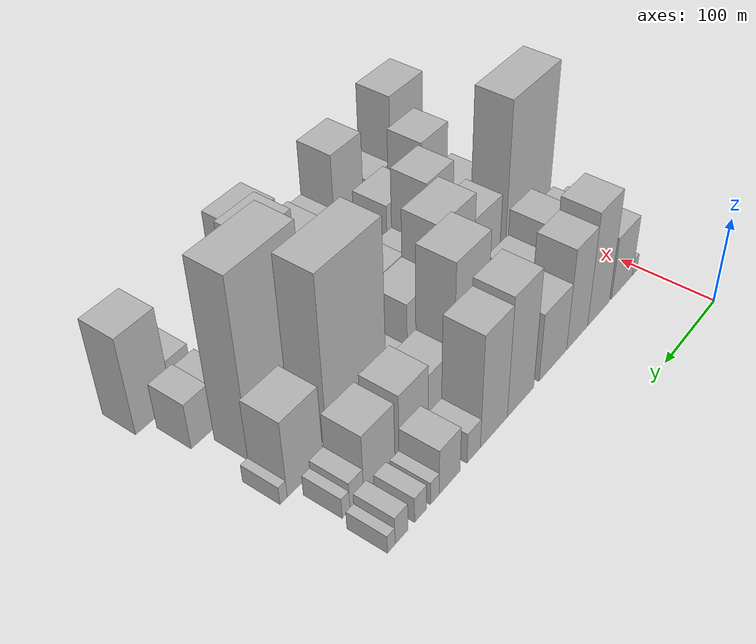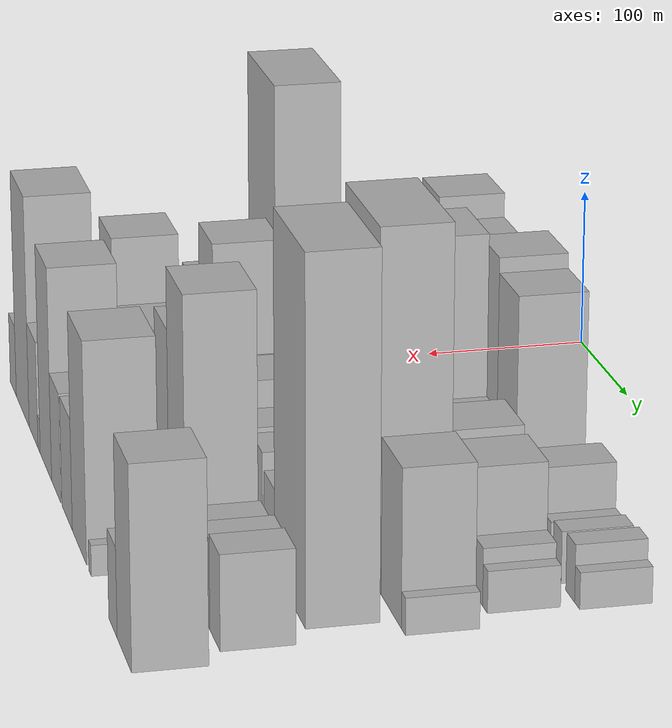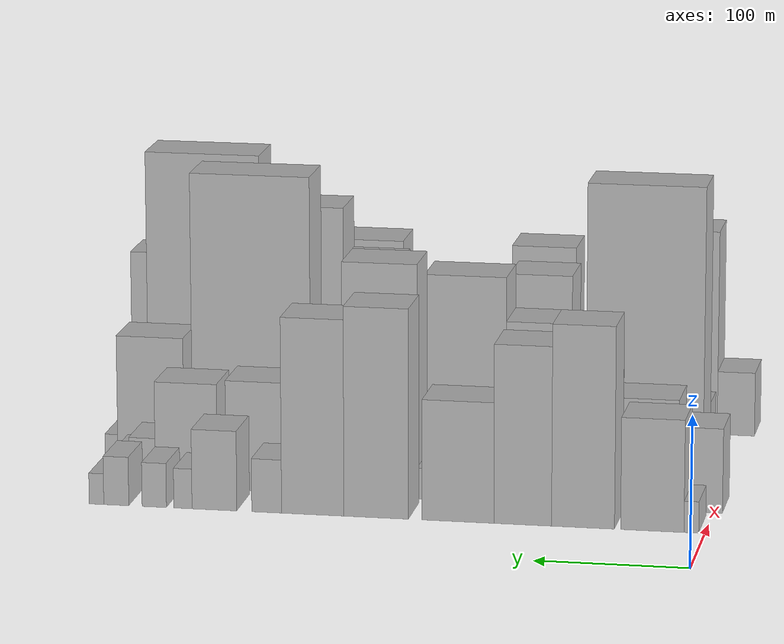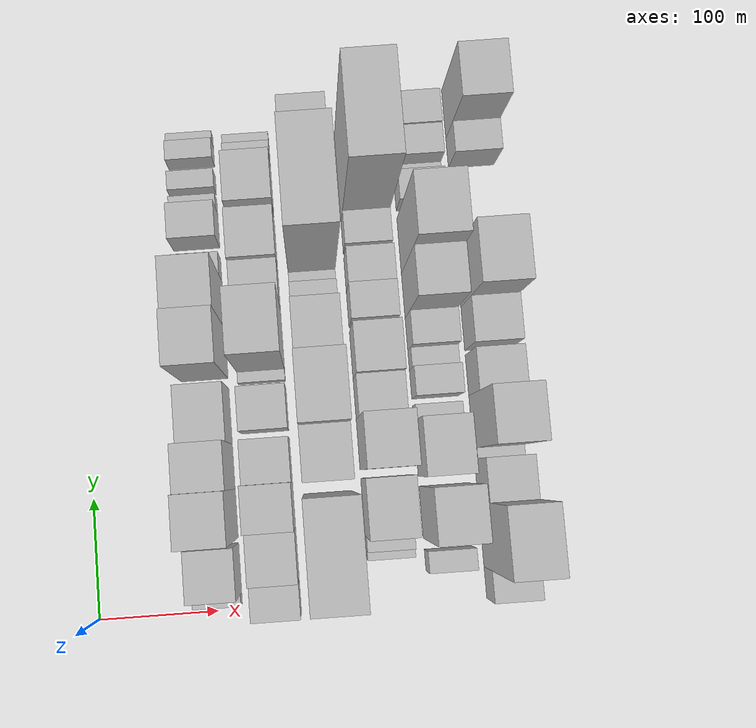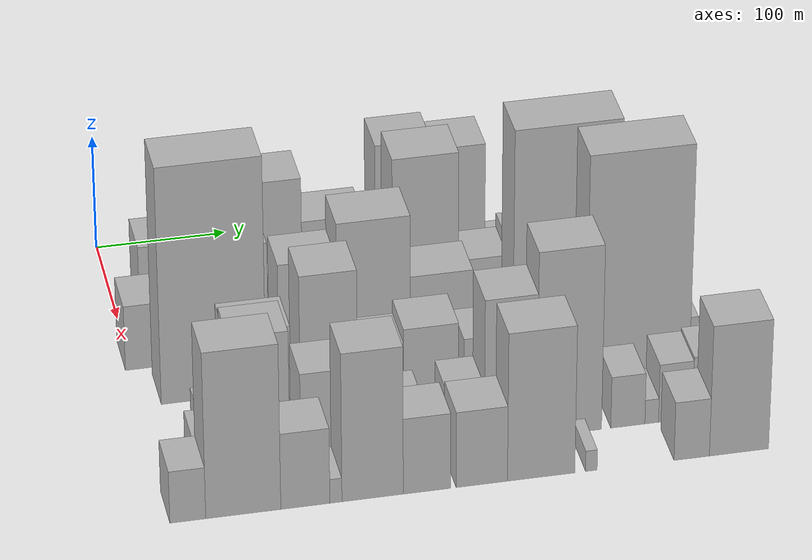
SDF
<sdf version="1.6">
 <world name="default">
  <model name="building_22">
   <static>1</static>
   <pose>100.0000 9.1661 0 0.000000 0.000000 0.000000</pose>
   <link name="link">
    <pose>0 0 10.50 0 0 0</pose>
    <collision name="collision"><geometry><box><size>40.0000 9.5852 21.0000</size></box></geometry></collision>
    <visual name="visual">
     <cast_shadows>0</cast_shadows>
     <geometry><box><size>40.0000 9.5852 21.0000</size></box></geometry>
     <material>
      <script>
       <uri>model://HANNAS_wall/materials/scripts</uri>
       <uri>model://HANNAS_wall/materials/textures</uri>
       <name>vrc/HANNAS_wall</name>
      </script>
     </material>
    </visual>
   </link>
  </model>
  <model name="building_23">
   <static>1</static>
   <pose>100.0000 34.5753 0 0.000000 0.000000 0.000000</pose>
   <link name="link">
    <pose>0 0 37.50 0 0 0</pose>
    <collision name="collision"><geometry><box><size>40.0000 41.2334 75.0000</size></box></geometry></collision>
    <visual name="visual">
     <cast_shadows>0</cast_shadows>
     <geometry><box><size>40.0000 41.2334 75.0000</size></box></geometry>
     <material>
      <script>
       <uri>model://HANNAS_wall/materials/scripts</uri>
       <uri>model://HANNAS_wall/materials/textures</uri>
       <name>vrc/HANNAS_wall</name>
      </script>
     </material>
    </visual>
   </link>
  </model>
  <model name="building_24">
   <static>1</static>
   <pose>100.0000 79.7952 0 0.000000 0.000000 0.000000</pose>
   <link name="link">
    <pose>0 0 67.50 0 0 0</pose>
    <collision name="collision"><geometry><box><size>40.0000 41.2063 135.0000</size></box></geometry></collision>
    <visual name="visual">
     <cast_shadows>0</cast_shadows>
     <geometry><box><size>40.0000 41.2063 135.0000</size></box></geometry>
     <material>
      <script>
       <uri>model://HANNAS_wall/materials/scripts</uri>
       <uri>model://HANNAS_wall/materials/textures</uri>
       <name>vrc/HANNAS_wall</name>
      </script>
     </material>
    </visual>
   </link>
  </model>
  <model name="building_25">
   <static>1</static>
   <pose>100.0000 119.3548 0 0.000000 0.000000 0.000000</pose>
   <link name="link">
    <pose>0 0 60.00 0 0 0</pose>
    <collision name="collision"><geometry><box><size>40.0000 37.9129 120.0000</size></box></geometry></collision>
    <visual name="visual">
     <cast_shadows>0</cast_shadows>
     <geometry><box><size>40.0000 37.9129 120.0000</size></box></geometry>
     <material>
      <script>
       <uri>model://HANNAS_wall/materials/scripts</uri>
       <uri>model://HANNAS_wall/materials/textures</uri>
       <name>vrc/HANNAS_wall</name>
      </script>
     </material>
    </visual>
   </link>
  </model>
  <model name="building_26">
   <static>1</static>
   <pose>100.0000 161.9908 0 0.000000 0.000000 0.000000</pose>
   <link name="link">
    <pose>0 0 40.50 0 0 0</pose>
    <collision name="collision"><geometry><box><size>40.0000 47.3593 81.0000</size></box></geometry></collision>
    <visual name="visual">
     <cast_shadows>0</cast_shadows>
     <geometry><box><size>40.0000 47.3593 81.0000</size></box></geometry>
     <material>
      <script>
       <uri>model://HANNAS_wall/materials/scripts</uri>
       <uri>model://HANNAS_wall/materials/textures</uri>
       <name>vrc/HANNAS_wall</name>
      </script>
     </material>
    </visual>
   </link>
  </model>
  <model name="building_27">
   <static>1</static>
   <pose>100.0000 216.1029 0 0.000000 0.000000 0.000000</pose>
   <link name="link">
    <pose>0 0 70.50 0 0 0</pose>
    <collision name="collision"><geometry><box><size>40.0000 42.8648 141.0000</size></box></geometry></collision>
    <visual name="visual">
     <cast_shadows>0</cast_shadows>
     <geometry><box><size>40.0000 42.8648 141.0000</size></box></geometry>
     <material>
      <script>
       <uri>model://HANNAS_wall/materials/scripts</uri>
       <uri>model://HANNAS_wall/materials/textures</uri>
       <name>vrc/HANNAS_wall</name>
      </script>
     </material>
    </visual>
   </link>
  </model>
  <model name="building_28">
   <static>1</static>
   <pose>100.0000 258.3487 0 0.000000 0.000000 0.000000</pose>
   <link name="link">
    <pose>0 0 66.00 0 0 0</pose>
    <collision name="collision"><geometry><box><size>40.0000 41.6270 132.0000</size></box></geometry></collision>
    <visual name="visual">
     <cast_shadows>0</cast_shadows>
     <geometry><box><size>40.0000 41.6270 132.0000</size></box></geometry>
     <material>
      <script>
       <uri>model://HANNAS_wall/materials/scripts</uri>
       <uri>model://HANNAS_wall/materials/textures</uri>
       <name>vrc/HANNAS_wall</name>
      </script>
     </material>
    </visual>
   </link>
  </model>
  <model name="building_29">
   <static>1</static>
   <pose>100.0000 289.1495 0 0.000000 0.000000 0.000000</pose>
   <link name="link">
    <pose>0 0 18.00 0 0 0</pose>
    <collision name="collision"><geometry><box><size>40.0000 19.9747 36.0000</size></box></geometry></collision>
    <visual name="visual">
     <cast_shadows>0</cast_shadows>
     <geometry><box><size>40.0000 19.9747 36.0000</size></box></geometry>
     <material>
      <script>
       <uri>model://HANNAS_wall/materials/scripts</uri>
       <uri>model://HANNAS_wall/materials/textures</uri>
       <name>vrc/HANNAS_wall</name>
      </script>
     </material>
    </visual>
   </link>
  </model>
  <model name="building_30">
   <static>1</static>
   <pose>100.0000 324.1866 0 0.000000 0.000000 0.000000</pose>
   <link name="link">
    <pose>0 0 27.00 0 0 0</pose>
    <collision name="collision"><geometry><box><size>40.0000 30.0996 54.0000</size></box></geometry></collision>
    <visual name="visual">
     <cast_shadows>0</cast_shadows>
     <geometry><box><size>40.0000 30.0996 54.0000</size></box></geometry>
     <material>
      <script>
       <uri>model://HANNAS_wall/materials/scripts</uri>
       <uri>model://HANNAS_wall/materials/textures</uri>
       <name>vrc/HANNAS_wall</name>
      </script>
     </material>
    </visual>
   </link>
  </model>
  <model name="building_31">
   <static>1</static>
   <pose>100.0000 345.3489 0 0.000000 0.000000 0.000000</pose>
   <link name="link">
    <pose>0 0 13.50 0 0 0</pose>
    <collision name="collision"><geometry><box><size>40.0000 12.2250 27.0000</size></box></geometry></collision>
    <visual name="visual">
     <cast_shadows>0</cast_shadows>
     <geometry><box><size>40.0000 12.2250 27.0000</size></box></geometry>
     <material>
      <script>
       <uri>model://HANNAS_wall/materials/scripts</uri>
       <uri>model://HANNAS_wall/materials/textures</uri>
       <name>vrc/HANNAS_wall</name>
      </script>
     </material>
    </visual>
   </link>
  </model>
  <model name="building_32">
   <static>1</static>
   <pose>100.0000 364.6628 0 0.000000 0.000000 0.000000</pose>
   <link name="link">
    <pose>0 0 15.00 0 0 0</pose>
    <collision name="collision"><geometry><box><size>40.0000 16.4029 30.0000</size></box></geometry></collision>
    <visual name="visual">
     <cast_shadows>0</cast_shadows>
     <geometry><box><size>40.0000 16.4029 30.0000</size></box></geometry>
     <material>
      <script>
       <uri>model://HANNAS_wall/materials/scripts</uri>
       <uri>model://HANNAS_wall/materials/textures</uri>
       <name>vrc/HANNAS_wall</name>
      </script>
     </material>
    </visual>
   </link>
  </model>
  <model name="building_33">
   <static>1</static>
   <pose>100.0000 390.3168 0 0.000000 0.000000 0.000000</pose>
   <link name="link">
    <pose>0 0 16.50 0 0 0</pose>
    <collision name="collision"><geometry><box><size>40.0000 16.9051 33.0000</size></box></geometry></collision>
    <visual name="visual">
     <cast_shadows>0</cast_shadows>
     <geometry><box><size>40.0000 16.9051 33.0000</size></box></geometry>
     <material>
      <script>
       <uri>model://HANNAS_wall/materials/scripts</uri>
       <uri>model://HANNAS_wall/materials/textures</uri>
       <name>vrc/HANNAS_wall</name>
      </script>
     </material>
    </visual>
   </link>
  </model>
  <model name="building_34">
   <static>1</static>
   <pose>100.0000 403.7031 0 0.000000 0.000000 0.000000</pose>
   <link name="link">
    <pose>0 0 10.50 0 0 0</pose>
    <collision name="collision"><geometry><box><size>40.0000 9.8676 21.0000</size></box></geometry></collision>
    <visual name="visual">
     <cast_shadows>0</cast_shadows>
     <geometry><box><size>40.0000 9.8676 21.0000</size></box></geometry>
     <material>
      <script>
       <uri>model://HANNAS_wall/materials/scripts</uri>
       <uri>model://HANNAS_wall/materials/textures</uri>
       <name>vrc/HANNAS_wall</name>
      </script>
     </material>
    </visual>
   </link>
  </model>
  <model name="building_66">
   <static>1</static>
   <pose>149.0000 9.1164 0 0.000000 0.000000 0.000000</pose>
   <link name="link">
    <pose>0 0 28.50 0 0 0</pose>
    <collision name="collision"><geometry><box><size>40.0000 29.1984 57.0000</size></box></geometry></collision>
    <visual name="visual">
     <cast_shadows>0</cast_shadows>
     <geometry><box><size>40.0000 29.1984 57.0000</size></box></geometry>
     <material>
      <script>
       <uri>model://HANNAS_wall/materials/scripts</uri>
       <uri>model://HANNAS_wall/materials/textures</uri>
       <name>vrc/HANNAS_wall</name>
      </script>
     </material>
    </visual>
   </link>
  </model>
  <model name="building_67">
   <static>1</static>
   <pose>149.0000 44.6338 0 0.000000 0.000000 0.000000</pose>
   <link name="link">
    <pose>0 0 37.50 0 0 0</pose>
    <collision name="collision"><geometry><box><size>40.0000 41.8364 75.0000</size></box></geometry></collision>
    <visual name="visual">
     <cast_shadows>0</cast_shadows>
     <geometry><box><size>40.0000 41.8364 75.0000</size></box></geometry>
     <material>
      <script>
       <uri>model://HANNAS_wall/materials/scripts</uri>
       <uri>model://HANNAS_wall/materials/textures</uri>
       <name>vrc/HANNAS_wall</name>
      </script>
     </material>
    </visual>
   </link>
  </model>
  <model name="building_68">
   <static>1</static>
   <pose>149.0000 84.2493 0 0.000000 0.000000 0.000000</pose>
   <link name="link">
    <pose>0 0 49.50 0 0 0</pose>
    <collision name="collision"><geometry><box><size>40.0000 37.3946 99.0000</size></box></geometry></collision>
    <visual name="visual">
     <cast_shadows>0</cast_shadows>
     <geometry><box><size>40.0000 37.3946 99.0000</size></box></geometry>
     <material>
      <script>
       <uri>model://HANNAS_wall/materials/scripts</uri>
       <uri>model://HANNAS_wall/materials/textures</uri>
       <name>vrc/HANNAS_wall</name>
      </script>
     </material>
    </visual>
   </link>
  </model>
  <model name="building_69">
   <static>1</static>
   <pose>149.0000 121.1175 0 0.000000 0.000000 0.000000</pose>
   <link name="link">
    <pose>0 0 34.50 0 0 0</pose>
    <collision name="collision"><geometry><box><size>40.0000 36.3419 69.0000</size></box></geometry></collision>
    <visual name="visual">
     <cast_shadows>0</cast_shadows>
     <geometry><box><size>40.0000 36.3419 69.0000</size></box></geometry>
     <material>
      <script>
       <uri>model://HANNAS_wall/materials/scripts</uri>
       <uri>model://HANNAS_wall/materials/textures</uri>
       <name>vrc/HANNAS_wall</name>
      </script>
     </material>
    </visual>
   </link>
  </model>
  <model name="building_70">
   <static>1</static>
   <pose>149.0000 164.3185 0 0.000000 0.000000 0.000000</pose>
   <link name="link">
    <pose>0 0 31.50 0 0 0</pose>
    <collision name="collision"><geometry><box><size>40.0000 36.0601 63.0000</size></box></geometry></collision>
    <visual name="visual">
     <cast_shadows>0</cast_shadows>
     <geometry><box><size>40.0000 36.0601 63.0000</size></box></geometry>
     <material>
      <script>
       <uri>model://HANNAS_wall/materials/scripts</uri>
       <uri>model://HANNAS_wall/materials/textures</uri>
       <name>vrc/HANNAS_wall</name>
      </script>
     </material>
    </visual>
   </link>
  </model>
  <model name="building_71">
   <static>1</static>
   <pose>149.0000 192.9836 0 0.000000 0.000000 0.000000</pose>
   <link name="link">
    <pose>0 0 10.50 0 0 0</pose>
    <collision name="collision"><geometry><box><size>40.0000 9.2701 21.0000</size></box></geometry></collision>
    <visual name="visual">
     <cast_shadows>0</cast_shadows>
     <geometry><box><size>40.0000 9.2701 21.0000</size></box></geometry>
     <material>
      <script>
       <uri>model://HANNAS_wall/materials/scripts</uri>
       <uri>model://HANNAS_wall/materials/textures</uri>
       <name>vrc/HANNAS_wall</name>
      </script>
     </material>
    </visual>
   </link>
  </model>
  <model name="building_72">
   <static>1</static>
   <pose>149.0000 222.7873 0 0.000000 0.000000 0.000000</pose>
   <link name="link">
    <pose>0 0 79.50 0 0 0</pose>
    <collision name="collision"><geometry><box><size>40.0000 50.3372 159.0000</size></box></geometry></collision>
    <visual name="visual">
     <cast_shadows>0</cast_shadows>
     <geometry><box><size>40.0000 50.3372 159.0000</size></box></geometry>
     <material>
      <script>
       <uri>model://HANNAS_wall/materials/scripts</uri>
       <uri>model://HANNAS_wall/materials/textures</uri>
       <name>vrc/HANNAS_wall</name>
      </script>
     </material>
    </visual>
   </link>
  </model>
  <model name="building_73">
   <static>1</static>
   <pose>149.0000 266.7181 0 0.000000 0.000000 0.000000</pose>
   <link name="link">
    <pose>0 0 31.50 0 0 0</pose>
    <collision name="collision"><geometry><box><size>40.0000 37.5245 63.0000</size></box></geometry></collision>
    <visual name="visual">
     <cast_shadows>0</cast_shadows>
     <geometry><box><size>40.0000 37.5245 63.0000</size></box></geometry>
     <material>
      <script>
       <uri>model://HANNAS_wall/materials/scripts</uri>
       <uri>model://HANNAS_wall/materials/textures</uri>
       <name>vrc/HANNAS_wall</name>
      </script>
     </material>
    </visual>
   </link>
  </model>
  <model name="building_74">
   <static>1</static>
   <pose>149.0000 306.2105 0 0.000000 0.000000 0.000000</pose>
   <link name="link">
    <pose>0 0 37.50 0 0 0</pose>
    <collision name="collision"><geometry><box><size>40.0000 41.4601 75.0000</size></box></geometry></collision>
    <visual name="visual">
     <cast_shadows>0</cast_shadows>
     <geometry><box><size>40.0000 41.4601 75.0000</size></box></geometry>
     <material>
      <script>
       <uri>model://HANNAS_wall/materials/scripts</uri>
       <uri>model://HANNAS_wall/materials/textures</uri>
       <name>vrc/HANNAS_wall</name>
      </script>
     </material>
    </visual>
   </link>
  </model>
  <model name="building_75">
   <static>1</static>
   <pose>149.0000 354.0770 0 0.000000 0.000000 0.000000</pose>
   <link name="link">
    <pose>0 0 36.00 0 0 0</pose>
    <collision name="collision"><geometry><box><size>40.0000 42.2728 72.0000</size></box></geometry></collision>
    <visual name="visual">
     <cast_shadows>0</cast_shadows>
     <geometry><box><size>40.0000 42.2728 72.0000</size></box></geometry>
     <material>
      <script>
       <uri>model://HANNAS_wall/materials/scripts</uri>
       <uri>model://HANNAS_wall/materials/textures</uri>
       <name>vrc/HANNAS_wall</name>
      </script>
     </material>
    </visual>
   </link>
  </model>
  <model name="building_76">
   <static>1</static>
   <pose>149.0000 384.2077 0 0.000000 0.000000 0.000000</pose>
   <link name="link">
    <pose>0 0 16.50 0 0 0</pose>
    <collision name="collision"><geometry><box><size>40.0000 17.9886 33.0000</size></box></geometry></collision>
    <visual name="visual">
     <cast_shadows>0</cast_shadows>
     <geometry><box><size>40.0000 17.9886 33.0000</size></box></geometry>
     <material>
      <script>
       <uri>model://HANNAS_wall/materials/scripts</uri>
       <uri>model://HANNAS_wall/materials/textures</uri>
       <name>vrc/HANNAS_wall</name>
      </script>
     </material>
    </visual>
   </link>
  </model>
  <model name="building_77">
   <static>1</static>
   <pose>149.0000 398.1932 0 0.000000 0.000000 0.000000</pose>
   <link name="link">
    <pose>0 0 12.00 0 0 0</pose>
    <collision name="collision"><geometry><box><size>40.0000 9.9822 24.0000</size></box></geometry></collision>
    <visual name="visual">
     <cast_shadows>0</cast_shadows>
     <geometry><box><size>40.0000 9.9822 24.0000</size></box></geometry>
     <material>
      <script>
       <uri>model://HANNAS_wall/materials/scripts</uri>
       <uri>model://HANNAS_wall/materials/textures</uri>
       <name>vrc/HANNAS_wall</name>
      </script>
     </material>
    </visual>
   </link>
  </model>
  <model name="building_112">
   <static>1</static>
   <pose>198.0000 52.5834 0 0.000000 0.000000 0.000000</pose>
   <link name="link">
    <pose>0 0 103.50 0 0 0</pose>
    <collision name="collision"><geometry><box><size>40.0000 78.7155 207.0000</size></box></geometry></collision>
    <visual name="visual">
     <cast_shadows>0</cast_shadows>
     <geometry><box><size>40.0000 78.7155 207.0000</size></box></geometry>
     <material>
      <script>
       <uri>model://HANNAS_wall/materials/scripts</uri>
       <uri>model://HANNAS_wall/materials/textures</uri>
       <name>vrc/HANNAS_wall</name>
      </script>
     </material>
    </visual>
   </link>
  </model>
  <model name="building_113">
   <static>1</static>
   <pose>198.0000 123.8602 0 0.000000 0.000000 0.000000</pose>
   <link name="link">
    <pose>0 0 55.50 0 0 0</pose>
    <collision name="collision"><geometry><box><size>40.0000 43.8381 111.0000</size></box></geometry></collision>
    <visual name="visual">
     <cast_shadows>0</cast_shadows>
     <geometry><box><size>40.0000 43.8381 111.0000</size></box></geometry>
     <material>
      <script>
       <uri>model://HANNAS_wall/materials/scripts</uri>
       <uri>model://HANNAS_wall/materials/textures</uri>
       <name>vrc/HANNAS_wall</name>
      </script>
     </material>
    </visual>
   </link>
  </model>
  <model name="building_114">
   <static>1</static>
   <pose>198.0000 173.4281 0 0.000000 0.000000 0.000000</pose>
   <link name="link">
    <pose>0 0 70.50 0 0 0</pose>
    <collision name="collision"><geometry><box><size>40.0000 55.2977 141.0000</size></box></geometry></collision>
    <visual name="visual">
     <cast_shadows>0</cast_shadows>
     <geometry><box><size>40.0000 55.2977 141.0000</size></box></geometry>
     <material>
      <script>
       <uri>model://HANNAS_wall/materials/scripts</uri>
       <uri>model://HANNAS_wall/materials/textures</uri>
       <name>vrc/HANNAS_wall</name>
      </script>
     </material>
    </visual>
   </link>
  </model>
  <model name="building_115">
   <static>1</static>
   <pose>198.0000 224.7339 0 0.000000 0.000000 0.000000</pose>
   <link name="link">
    <pose>0 0 43.50 0 0 0</pose>
    <collision name="collision"><geometry><box><size>40.0000 47.3138 87.0000</size></box></geometry></collision>
    <visual name="visual">
     <cast_shadows>0</cast_shadows>
     <geometry><box><size>40.0000 47.3138 87.0000</size></box></geometry>
     <material>
      <script>
       <uri>model://HANNAS_wall/materials/scripts</uri>
       <uri>model://HANNAS_wall/materials/textures</uri>
       <name>vrc/HANNAS_wall</name>
      </script>
     </material>
    </visual>
   </link>
  </model>
  <model name="building_116">
   <static>1</static>
   <pose>198.0000 258.4182 0 0.000000 0.000000 0.000000</pose>
   <link name="link">
    <pose>0 0 19.50 0 0 0</pose>
    <collision name="collision"><geometry><box><size>40.0000 20.0548 39.0000</size></box></geometry></collision>
    <visual name="visual">
     <cast_shadows>0</cast_shadows>
     <geometry><box><size>40.0000 20.0548 39.0000</size></box></geometry>
     <material>
      <script>
       <uri>model://HANNAS_wall/materials/scripts</uri>
       <uri>model://HANNAS_wall/materials/textures</uri>
       <name>vrc/HANNAS_wall</name>
      </script>
     </material>
    </visual>
   </link>
  </model>
  <model name="building_117">
   <static>1</static>
   <pose>198.0000 273.7529 0 0.000000 0.000000 0.000000</pose>
   <link name="link">
    <pose>0 0 12.00 0 0 0</pose>
    <collision name="collision"><geometry><box><size>40.0000 10.6147 24.0000</size></box></geometry></collision>
    <visual name="visual">
     <cast_shadows>0</cast_shadows>
     <geometry><box><size>40.0000 10.6147 24.0000</size></box></geometry>
     <material>
      <script>
       <uri>model://HANNAS_wall/materials/scripts</uri>
       <uri>model://HANNAS_wall/materials/textures</uri>
       <name>vrc/HANNAS_wall</name>
      </script>
     </material>
    </visual>
   </link>
  </model>
  <model name="building_118">
   <static>1</static>
   <pose>198.0000 319.8002 0 0.000000 0.000000 0.000000</pose>
   <link name="link">
    <pose>0 0 102.00 0 0 0</pose>
    <collision name="collision"><geometry><box><size>40.0000 81.4798 204.0000</size></box></geometry></collision>
    <visual name="visual">
     <cast_shadows>0</cast_shadows>
     <geometry><box><size>40.0000 81.4798 204.0000</size></box></geometry>
     <material>
      <script>
       <uri>model://HANNAS_wall/materials/scripts</uri>
       <uri>model://HANNAS_wall/materials/textures</uri>
       <name>vrc/HANNAS_wall</name>
      </script>
     </material>
    </visual>
   </link>
  </model>
  <model name="building_119">
   <static>1</static>
   <pose>198.0000 363.5542 0 0.000000 0.000000 0.000000</pose>
   <link name="link">
    <pose>0 0 7.50 0 0 0</pose>
    <collision name="collision"><geometry><box><size>40.0000 6.0283 15.0000</size></box></geometry></collision>
    <visual name="visual">
     <cast_shadows>0</cast_shadows>
     <geometry><box><size>40.0000 6.0283 15.0000</size></box></geometry>
     <material>
      <script>
       <uri>model://HANNAS_wall/materials/scripts</uri>
       <uri>model://HANNAS_wall/materials/textures</uri>
       <name>vrc/HANNAS_wall</name>
      </script>
     </material>
    </visual>
   </link>
  </model>
  <model name="building_120">
   <static>1</static>
   <pose>198.0000 389.5732 0 0.000000 0.000000 0.000000</pose>
   <link name="link">
    <pose>0 0 45.00 0 0 0</pose>
    <collision name="collision"><geometry><box><size>40.0000 46.0097 90.0000</size></box></geometry></collision>
    <visual name="visual">
     <cast_shadows>0</cast_shadows>
     <geometry><box><size>40.0000 46.0097 90.0000</size></box></geometry>
     <material>
      <script>
       <uri>model://HANNAS_wall/materials/scripts</uri>
       <uri>model://HANNAS_wall/materials/textures</uri>
       <name>vrc/HANNAS_wall</name>
      </script>
     </material>
    </visual>
   </link>
  </model>
  <model name="building_121">
   <static>1</static>
   <pose>198.0000 417.0687 0 0.000000 0.000000 0.000000</pose>
   <link name="link">
    <pose>0 0 10.50 0 0 0</pose>
    <collision name="collision"><geometry><box><size>40.0000 8.9812 21.0000</size></box></geometry></collision>
    <visual name="visual">
     <cast_shadows>0</cast_shadows>
     <geometry><box><size>40.0000 8.9812 21.0000</size></box></geometry>
     <material>
      <script>
       <uri>model://HANNAS_wall/materials/scripts</uri>
       <uri>model://HANNAS_wall/materials/textures</uri>
       <name>vrc/HANNAS_wall</name>
      </script>
     </material>
    </visual>
   </link>
  </model>
  <model name="building_161">
   <static>1</static>
   <pose>247.0000 37.1595 0 0.000000 0.000000 0.000000</pose>
   <link name="link">
    <pose>0 0 9.00 0 0 0</pose>
    <collision name="collision"><geometry><box><size>40.0000 7.2282 18.0000</size></box></geometry></collision>
    <visual name="visual">
     <cast_shadows>0</cast_shadows>
     <geometry><box><size>40.0000 7.2282 18.0000</size></box></geometry>
     <material>
      <script>
       <uri>model://HANNAS_wall/materials/scripts</uri>
       <uri>model://HANNAS_wall/materials/textures</uri>
       <name>vrc/HANNAS_wall</name>
      </script>
     </material>
    </visual>
   </link>
  </model>
  <model name="building_162">
   <static>1</static>
   <pose>247.0000 47.1536 0 0.000000 0.000000 0.000000</pose>
   <link name="link">
    <pose>0 0 13.50 0 0 0</pose>
    <collision name="collision"><geometry><box><size>40.0000 12.7600 27.0000</size></box></geometry></collision>
    <visual name="visual">
     <cast_shadows>0</cast_shadows>
     <geometry><box><size>40.0000 12.7600 27.0000</size></box></geometry>
     <material>
      <script>
       <uri>model://HANNAS_wall/materials/scripts</uri>
       <uri>model://HANNAS_wall/materials/textures</uri>
       <name>vrc/HANNAS_wall</name>
      </script>
     </material>
    </visual>
   </link>
  </model>
  <model name="building_163">
   <static>1</static>
   <pose>247.0000 77.5906 0 0.000000 0.000000 0.000000</pose>
   <link name="link">
    <pose>0 0 45.00 0 0 0</pose>
    <collision name="collision"><geometry><box><size>40.0000 48.1140 90.0000</size></box></geometry></collision>
    <visual name="visual">
     <cast_shadows>0</cast_shadows>
     <geometry><box><size>40.0000 48.1140 90.0000</size></box></geometry>
     <material>
      <script>
       <uri>model://HANNAS_wall/materials/scripts</uri>
       <uri>model://HANNAS_wall/materials/textures</uri>
       <name>vrc/HANNAS_wall</name>
      </script>
     </material>
    </visual>
   </link>
  </model>
  <model name="building_164">
   <static>1</static>
   <pose>247.0000 129.9689 0 0.000000 0.000000 0.000000</pose>
   <link name="link">
    <pose>0 0 66.00 0 0 0</pose>
    <collision name="collision"><geometry><box><size>40.0000 42.6427 132.0000</size></box></geometry></collision>
    <visual name="visual">
     <cast_shadows>0</cast_shadows>
     <geometry><box><size>40.0000 42.6427 132.0000</size></box></geometry>
     <material>
      <script>
       <uri>model://HANNAS_wall/materials/scripts</uri>
       <uri>model://HANNAS_wall/materials/textures</uri>
       <name>vrc/HANNAS_wall</name>
      </script>
     </material>
    </visual>
   </link>
  </model>
  <model name="building_165">
   <static>1</static>
   <pose>247.0000 168.5126 0 0.000000 0.000000 0.000000</pose>
   <link name="link">
    <pose>0 0 31.50 0 0 0</pose>
    <collision name="collision"><geometry><box><size>40.0000 34.4446 63.0000</size></box></geometry></collision>
    <visual name="visual">
     <cast_shadows>0</cast_shadows>
     <geometry><box><size>40.0000 34.4446 63.0000</size></box></geometry>
     <material>
      <script>
       <uri>model://HANNAS_wall/materials/scripts</uri>
       <uri>model://HANNAS_wall/materials/textures</uri>
       <name>vrc/HANNAS_wall</name>
      </script>
     </material>
    </visual>
   </link>
  </model>
  <model name="building_166">
   <static>1</static>
   <pose>247.0000 206.3628 0 0.000000 0.000000 0.000000</pose>
   <link name="link">
    <pose>0 0 37.50 0 0 0</pose>
    <collision name="collision"><geometry><box><size>40.0000 41.2558 75.0000</size></box></geometry></collision>
    <visual name="visual">
     <cast_shadows>0</cast_shadows>
     <geometry><box><size>40.0000 41.2558 75.0000</size></box></geometry>
     <material>
      <script>
       <uri>model://HANNAS_wall/materials/scripts</uri>
       <uri>model://HANNAS_wall/materials/textures</uri>
       <name>vrc/HANNAS_wall</name>
      </script>
     </material>
    </visual>
   </link>
  </model>
  <model name="building_167">
   <static>1</static>
   <pose>247.0000 246.0816 0 0.000000 0.000000 0.000000</pose>
   <link name="link">
    <pose>0 0 30.00 0 0 0</pose>
    <collision name="collision"><geometry><box><size>40.0000 30.1819 60.0000</size></box></geometry></collision>
    <visual name="visual">
     <cast_shadows>0</cast_shadows>
     <geometry><box><size>40.0000 30.1819 60.0000</size></box></geometry>
     <material>
      <script>
       <uri>model://HANNAS_wall/materials/scripts</uri>
       <uri>model://HANNAS_wall/materials/textures</uri>
       <name>vrc/HANNAS_wall</name>
      </script>
     </material>
    </visual>
   </link>
  </model>
  <model name="building_168">
   <static>1</static>
   <pose>247.0000 276.3385 0 0.000000 0.000000 0.000000</pose>
   <link name="link">
    <pose>0 0 28.50 0 0 0</pose>
    <collision name="collision"><geometry><box><size>40.0000 30.3320 57.0000</size></box></geometry></collision>
    <visual name="visual">
     <cast_shadows>0</cast_shadows>
     <geometry><box><size>40.0000 30.3320 57.0000</size></box></geometry>
     <material>
      <script>
       <uri>model://HANNAS_wall/materials/scripts</uri>
       <uri>model://HANNAS_wall/materials/textures</uri>
       <name>vrc/HANNAS_wall</name>
      </script>
     </material>
    </visual>
   </link>
  </model>
  <model name="building_169">
   <static>1</static>
   <pose>247.0000 309.5187 0 0.000000 0.000000 0.000000</pose>
   <link name="link">
    <pose>0 0 24.00 0 0 0</pose>
    <collision name="collision"><geometry><box><size>40.0000 28.0284 48.0000</size></box></geometry></collision>
    <visual name="visual">
     <cast_shadows>0</cast_shadows>
     <geometry><box><size>40.0000 28.0284 48.0000</size></box></geometry>
     <material>
      <script>
       <uri>model://HANNAS_wall/materials/scripts</uri>
       <uri>model://HANNAS_wall/materials/textures</uri>
       <name>vrc/HANNAS_wall</name>
      </script>
     </material>
    </visual>
   </link>
  </model>
  <model name="building_170">
   <static>1</static>
   <pose>247.0000 362.9396 0 0.000000 0.000000 0.000000</pose>
   <link name="link">
    <pose>0 0 103.50 0 0 0</pose>
    <collision name="collision"><geometry><box><size>40.0000 78.8132 207.0000</size></box></geometry></collision>
    <visual name="visual">
     <cast_shadows>0</cast_shadows>
     <geometry><box><size>40.0000 78.8132 207.0000</size></box></geometry>
     <material>
      <script>
       <uri>model://HANNAS_wall/materials/scripts</uri>
       <uri>model://HANNAS_wall/materials/textures</uri>
       <name>vrc/HANNAS_wall</name>
      </script>
     </material>
    </visual>
   </link>
  </model>
  <model name="building_209">
   <static>1</static>
   <pose>296.0000 29.5977 0 0.000000 0.000000 0.000000</pose>
   <link name="link">
    <pose>0 0 16.50 0 0 0</pose>
    <collision name="collision"><geometry><box><size>40.0000 17.8611 33.0000</size></box></geometry></collision>
    <visual name="visual">
     <cast_shadows>0</cast_shadows>
     <geometry><box><size>40.0000 17.8611 33.0000</size></box></geometry>
     <material>
      <script>
       <uri>model://HANNAS_wall/materials/scripts</uri>
       <uri>model://HANNAS_wall/materials/textures</uri>
       <name>vrc/HANNAS_wall</name>
      </script>
     </material>
    </visual>
   </link>
  </model>
  <model name="building_210">
   <static>1</static>
   <pose>296.0000 69.4415 0 0.000000 0.000000 0.000000</pose>
   <link name="link">
    <pose>0 0 60.00 0 0 0</pose>
    <collision name="collision"><geometry><box><size>40.0000 43.8264 120.0000</size></box></geometry></collision>
    <visual name="visual">
     <cast_shadows>0</cast_shadows>
     <geometry><box><size>40.0000 43.8264 120.0000</size></box></geometry>
     <material>
      <script>
       <uri>model://HANNAS_wall/materials/scripts</uri>
       <uri>model://HANNAS_wall/materials/textures</uri>
       <name>vrc/HANNAS_wall</name>
      </script>
     </material>
    </visual>
   </link>
  </model>
  <model name="building_211">
   <static>1</static>
   <pose>296.0000 123.1635 0 0.000000 0.000000 0.000000</pose>
   <link name="link">
    <pose>0 0 40.50 0 0 0</pose>
    <collision name="collision"><geometry><box><size>40.0000 47.6177 81.0000</size></box></geometry></collision>
    <visual name="visual">
     <cast_shadows>0</cast_shadows>
     <geometry><box><size>40.0000 47.6177 81.0000</size></box></geometry>
     <material>
      <script>
       <uri>model://HANNAS_wall/materials/scripts</uri>
       <uri>model://HANNAS_wall/materials/textures</uri>
       <name>vrc/HANNAS_wall</name>
      </script>
     </material>
    </visual>
   </link>
  </model>
  <model name="building_212">
   <static>1</static>
   <pose>296.0000 153.2409 0 0.000000 0.000000 0.000000</pose>
   <link name="link">
    <pose>0 0 13.50 0 0 0</pose>
    <collision name="collision"><geometry><box><size>40.0000 12.5372 27.0000</size></box></geometry></collision>
    <visual name="visual">
     <cast_shadows>0</cast_shadows>
     <geometry><box><size>40.0000 12.5372 27.0000</size></box></geometry>
     <material>
      <script>
       <uri>model://HANNAS_wall/materials/scripts</uri>
       <uri>model://HANNAS_wall/materials/textures</uri>
       <name>vrc/HANNAS_wall</name>
      </script>
     </material>
    </visual>
   </link>
  </model>
  <model name="building_213">
   <static>1</static>
   <pose>296.0000 177.8517 0 0.000000 0.000000 0.000000</pose>
   <link name="link">
    <pose>0 0 22.50 0 0 0</pose>
    <collision name="collision"><geometry><box><size>40.0000 24.6843 45.0000</size></box></geometry></collision>
    <visual name="visual">
     <cast_shadows>0</cast_shadows>
     <geometry><box><size>40.0000 24.6843 45.0000</size></box></geometry>
     <material>
      <script>
       <uri>model://HANNAS_wall/materials/scripts</uri>
       <uri>model://HANNAS_wall/materials/textures</uri>
       <name>vrc/HANNAS_wall</name>
      </script>
     </material>
    </visual>
   </link>
  </model>
  <model name="building_214">
   <static>1</static>
   <pose>296.0000 198.6829 0 0.000000 0.000000 0.000000</pose>
   <link name="link">
    <pose>0 0 15.00 0 0 0</pose>
    <collision name="collision"><geometry><box><size>40.0000 16.9780 30.0000</size></box></geometry></collision>
    <visual name="visual">
     <cast_shadows>0</cast_shadows>
     <geometry><box><size>40.0000 16.9780 30.0000</size></box></geometry>
     <material>
      <script>
       <uri>model://HANNAS_wall/materials/scripts</uri>
       <uri>model://HANNAS_wall/materials/textures</uri>
       <name>vrc/HANNAS_wall</name>
      </script>
     </material>
    </visual>
   </link>
  </model>
  <model name="building_215">
   <static>1</static>
   <pose>296.0000 221.4065 0 0.000000 0.000000 0.000000</pose>
   <link name="link">
    <pose>0 0 25.50 0 0 0</pose>
    <collision name="collision"><geometry><box><size>40.0000 28.4693 51.0000</size></box></geometry></collision>
    <visual name="visual">
     <cast_shadows>0</cast_shadows>
     <geometry><box><size>40.0000 28.4693 51.0000</size></box></geometry>
     <material>
      <script>
       <uri>model://HANNAS_wall/materials/scripts</uri>
       <uri>model://HANNAS_wall/materials/textures</uri>
       <name>vrc/HANNAS_wall</name>
      </script>
     </material>
    </visual>
   </link>
  </model>
  <model name="building_216">
   <static>1</static>
   <pose>296.0000 255.3414 0 0.000000 0.000000 0.000000</pose>
   <link name="link">
    <pose>0 0 63.00 0 0 0</pose>
    <collision name="collision"><geometry><box><size>40.0000 39.4004 126.0000</size></box></geometry></collision>
    <visual name="visual">
     <cast_shadows>0</cast_shadows>
     <geometry><box><size>40.0000 39.4004 126.0000</size></box></geometry>
     <material>
      <script>
       <uri>model://HANNAS_wall/materials/scripts</uri>
       <uri>model://HANNAS_wall/materials/textures</uri>
       <name>vrc/HANNAS_wall</name>
      </script>
     </material>
    </visual>
   </link>
  </model>
  <model name="building_217">
   <static>1</static>
   <pose>296.0000 299.3544 0 0.000000 0.000000 0.000000</pose>
   <link name="link">
    <pose>0 0 81.00 0 0 0</pose>
    <collision name="collision"><geometry><box><size>40.0000 48.6257 162.0000</size></box></geometry></collision>
    <visual name="visual">
     <cast_shadows>0</cast_shadows>
     <geometry><box><size>40.0000 48.6257 162.0000</size></box></geometry>
     <material>
      <script>
       <uri>model://HANNAS_wall/materials/scripts</uri>
       <uri>model://HANNAS_wall/materials/textures</uri>
       <name>vrc/HANNAS_wall</name>
      </script>
     </material>
    </visual>
   </link>
  </model>
  <model name="building_218">
   <static>1</static>
   <pose>296.0000 343.5324 0 0.000000 0.000000 0.000000</pose>
   <link name="link">
    <pose>0 0 22.50 0 0 0</pose>
    <collision name="collision"><geometry><box><size>40.0000 25.7305 45.0000</size></box></geometry></collision>
    <visual name="visual">
     <cast_shadows>0</cast_shadows>
     <geometry><box><size>40.0000 25.7305 45.0000</size></box></geometry>
     <material>
      <script>
       <uri>model://HANNAS_wall/materials/scripts</uri>
       <uri>model://HANNAS_wall/materials/textures</uri>
       <name>vrc/HANNAS_wall</name>
      </script>
     </material>
    </visual>
   </link>
  </model>
  <model name="building_219">
   <static>1</static>
   <pose>296.0000 361.6015 0 0.000000 0.000000 0.000000</pose>
   <link name="link">
    <pose>0 0 10.50 0 0 0</pose>
    <collision name="collision"><geometry><box><size>40.0000 10.4077 21.0000</size></box></geometry></collision>
    <visual name="visual">
     <cast_shadows>0</cast_shadows>
     <geometry><box><size>40.0000 10.4077 21.0000</size></box></geometry>
     <material>
      <script>
       <uri>model://HANNAS_wall/materials/scripts</uri>
       <uri>model://HANNAS_wall/materials/textures</uri>
       <name>vrc/HANNAS_wall</name>
      </script>
     </material>
    </visual>
   </link>
  </model>
  <model name="building_220">
   <static>1</static>
   <pose>296.0000 379.6487 0 0.000000 0.000000 0.000000</pose>
   <link name="link">
    <pose>0 0 25.50 0 0 0</pose>
    <collision name="collision"><geometry><box><size>40.0000 25.6866 51.0000</size></box></geometry></collision>
    <visual name="visual">
     <cast_shadows>0</cast_shadows>
     <geometry><box><size>40.0000 25.6866 51.0000</size></box></geometry>
     <material>
      <script>
       <uri>model://HANNAS_wall/materials/scripts</uri>
       <uri>model://HANNAS_wall/materials/textures</uri>
       <name>vrc/HANNAS_wall</name>
      </script>
     </material>
    </visual>
   </link>
  </model>
  <model name="building_221">
   <static>1</static>
   <pose>296.0000 406.7369 0 0.000000 0.000000 0.000000</pose>
   <link name="link">
    <pose>0 0 27.00 0 0 0</pose>
    <collision name="collision"><geometry><box><size>40.0000 28.4896 54.0000</size></box></geometry></collision>
    <visual name="visual">
     <cast_shadows>0</cast_shadows>
     <geometry><box><size>40.0000 28.4896 54.0000</size></box></geometry>
     <material>
      <script>
       <uri>model://HANNAS_wall/materials/scripts</uri>
       <uri>model://HANNAS_wall/materials/textures</uri>
       <name>vrc/HANNAS_wall</name>
      </script>
     </material>
    </visual>
   </link>
  </model>
  <model name="building_254">
   <static>1</static>
   <pose>345.0000 7.4084 0 0.000000 0.000000 0.000000</pose>
   <link name="link">
    <pose>0 0 22.50 0 0 0</pose>
    <collision name="collision"><geometry><box><size>40.0000 26.0369 45.0000</size></box></geometry></collision>
    <visual name="visual">
     <cast_shadows>0</cast_shadows>
     <geometry><box><size>40.0000 26.0369 45.0000</size></box></geometry>
     <material>
      <script>
       <uri>model://HANNAS_wall/materials/scripts</uri>
       <uri>model://HANNAS_wall/materials/textures</uri>
       <name>vrc/HANNAS_wall</name>
      </script>
     </material>
    </visual>
   </link>
  </model>
  <model name="building_255">
   <static>1</static>
   <pose>345.0000 47.8187 0 0.000000 0.000000 0.000000</pose>
   <link name="link">
    <pose>0 0 72.00 0 0 0</pose>
    <collision name="collision"><geometry><box><size>40.0000 54.7837 144.0000</size></box></geometry></collision>
    <visual name="visual">
     <cast_shadows>0</cast_shadows>
     <geometry><box><size>40.0000 54.7837 144.0000</size></box></geometry>
     <material>
      <script>
       <uri>model://HANNAS_wall/materials/scripts</uri>
       <uri>model://HANNAS_wall/materials/textures</uri>
       <name>vrc/HANNAS_wall</name>
      </script>
     </material>
    </visual>
   </link>
  </model>
  <model name="building_256">
   <static>1</static>
   <pose>345.0000 93.1473 0 0.000000 0.000000 0.000000</pose>
   <link name="link">
    <pose>0 0 33.00 0 0 0</pose>
    <collision name="collision"><geometry><box><size>40.0000 35.8734 66.0000</size></box></geometry></collision>
    <visual name="visual">
     <cast_shadows>0</cast_shadows>
     <geometry><box><size>40.0000 35.8734 66.0000</size></box></geometry>
     <material>
      <script>
       <uri>model://HANNAS_wall/materials/scripts</uri>
       <uri>model://HANNAS_wall/materials/textures</uri>
       <name>vrc/HANNAS_wall</name>
      </script>
     </material>
    </visual>
   </link>
  </model>
  <model name="building_257">
   <static>1</static>
   <pose>345.0000 115.5238 0 0.000000 0.000000 0.000000</pose>
   <link name="link">
    <pose>0 0 10.50 0 0 0</pose>
    <collision name="collision"><geometry><box><size>40.0000 8.8797 21.0000</size></box></geometry></collision>
    <visual name="visual">
     <cast_shadows>0</cast_shadows>
     <geometry><box><size>40.0000 8.8797 21.0000</size></box></geometry>
     <material>
      <script>
       <uri>model://HANNAS_wall/materials/scripts</uri>
       <uri>model://HANNAS_wall/materials/textures</uri>
       <name>vrc/HANNAS_wall</name>
      </script>
     </material>
    </visual>
   </link>
  </model>
  <model name="building_258">
   <static>1</static>
   <pose>345.0000 142.4806 0 0.000000 0.000000 0.000000</pose>
   <link name="link">
    <pose>0 0 64.50 0 0 0</pose>
    <collision name="collision"><geometry><box><size>40.0000 45.0339 129.0000</size></box></geometry></collision>
    <visual name="visual">
     <cast_shadows>0</cast_shadows>
     <geometry><box><size>40.0000 45.0339 129.0000</size></box></geometry>
     <material>
      <script>
       <uri>model://HANNAS_wall/materials/scripts</uri>
       <uri>model://HANNAS_wall/materials/textures</uri>
       <name>vrc/HANNAS_wall</name>
      </script>
     </material>
    </visual>
   </link>
  </model>
  <model name="building_259">
   <static>1</static>
   <pose>345.0000 182.4841 0 0.000000 0.000000 0.000000</pose>
   <link name="link">
    <pose>0 0 33.00 0 0 0</pose>
    <collision name="collision"><geometry><box><size>40.0000 34.9729 66.0000</size></box></geometry></collision>
    <visual name="visual">
     <cast_shadows>0</cast_shadows>
     <geometry><box><size>40.0000 34.9729 66.0000</size></box></geometry>
     <material>
      <script>
       <uri>model://HANNAS_wall/materials/scripts</uri>
       <uri>model://HANNAS_wall/materials/textures</uri>
       <name>vrc/HANNAS_wall</name>
      </script>
     </material>
    </visual>
   </link>
  </model>
  <model name="building_260">
   <static>1</static>
   <pose>345.0000 222.9693 0 0.000000 0.000000 0.000000</pose>
   <link name="link">
    <pose>0 0 33.00 0 0 0</pose>
    <collision name="collision"><geometry><box><size>40.0000 37.9975 66.0000</size></box></geometry></collision>
    <visual name="visual">
     <cast_shadows>0</cast_shadows>
     <geometry><box><size>40.0000 37.9975 66.0000</size></box></geometry>
     <material>
      <script>
       <uri>model://HANNAS_wall/materials/scripts</uri>
       <uri>model://HANNAS_wall/materials/textures</uri>
       <name>vrc/HANNAS_wall</name>
      </script>
     </material>
    </visual>
   </link>
  </model>
  <model name="building_261">
   <static>1</static>
   <pose>345.0000 267.0072 0 0.000000 0.000000 0.000000</pose>
   <link name="link">
    <pose>0 0 64.50 0 0 0</pose>
    <collision name="collision"><geometry><box><size>40.0000 50.0784 129.0000</size></box></geometry></collision>
    <visual name="visual">
     <cast_shadows>0</cast_shadows>
     <geometry><box><size>40.0000 50.0784 129.0000</size></box></geometry>
     <material>
      <script>
       <uri>model://HANNAS_wall/materials/scripts</uri>
       <uri>model://HANNAS_wall/materials/textures</uri>
       <name>vrc/HANNAS_wall</name>
      </script>
     </material>
    </visual>
   </link>
  </model>
  <model name="building_262">
   <static>1</static>
   <pose>345.0000 304.3504 0 0.000000 0.000000 0.000000</pose>
   <link name="link">
    <pose>0 0 9.00 0 0 0</pose>
    <collision name="collision"><geometry><box><size>40.0000 8.6081 18.0000</size></box></geometry></collision>
    <visual name="visual">
     <cast_shadows>0</cast_shadows>
     <geometry><box><size>40.0000 8.6081 18.0000</size></box></geometry>
     <material>
      <script>
       <uri>model://HANNAS_wall/materials/scripts</uri>
       <uri>model://HANNAS_wall/materials/textures</uri>
       <name>vrc/HANNAS_wall</name>
      </script>
     </material>
    </visual>
   </link>
  </model>
  <model name="building_263">
   <static>1</static>
   <pose>345.0000 379.4242 0 0.000000 0.000000 0.000000</pose>
   <link name="link">
    <pose>0 0 25.50 0 0 0</pose>
    <collision name="collision"><geometry><box><size>40.0000 26.5131 51.0000</size></box></geometry></collision>
    <visual name="visual">
     <cast_shadows>0</cast_shadows>
     <geometry><box><size>40.0000 26.5131 51.0000</size></box></geometry>
     <material>
      <script>
       <uri>model://HANNAS_wall/materials/scripts</uri>
       <uri>model://HANNAS_wall/materials/textures</uri>
       <name>vrc/HANNAS_wall</name>
      </script>
     </material>
    </visual>
   </link>
  </model>
  <model name="building_264">
   <static>1</static>
   <pose>345.0000 414.9102 0 0.000000 0.000000 0.000000</pose>
   <link name="link">
    <pose>0 0 57.00 0 0 0</pose>
    <collision name="collision"><geometry><box><size>40.0000 44.4589 114.0000</size></box></geometry></collision>
    <visual name="visual">
     <cast_shadows>0</cast_shadows>
     <geometry><box><size>40.0000 44.4589 114.0000</size></box></geometry>
     <material>
      <script>
       <uri>model://HANNAS_wall/materials/scripts</uri>
       <uri>model://HANNAS_wall/materials/textures</uri>
       <name>vrc/HANNAS_wall</name>
      </script>
     </material>
    </visual>
   </link>
  </model>
 </world>
</sdf>
